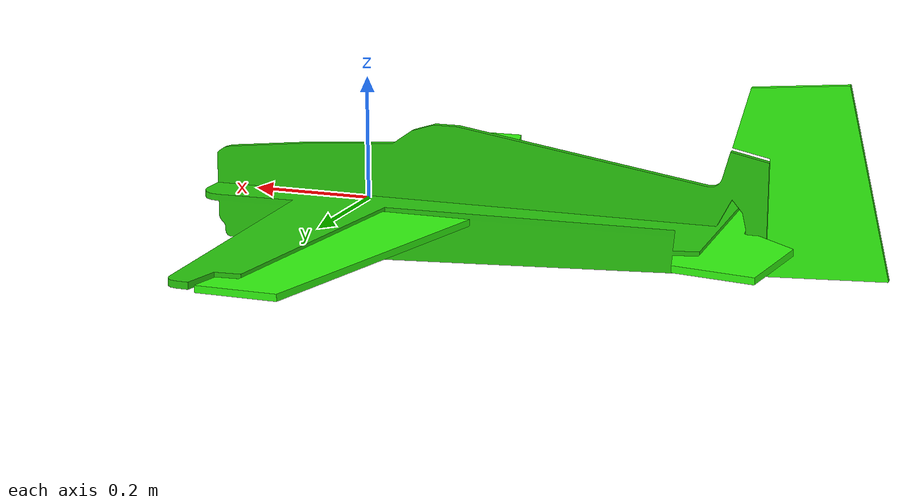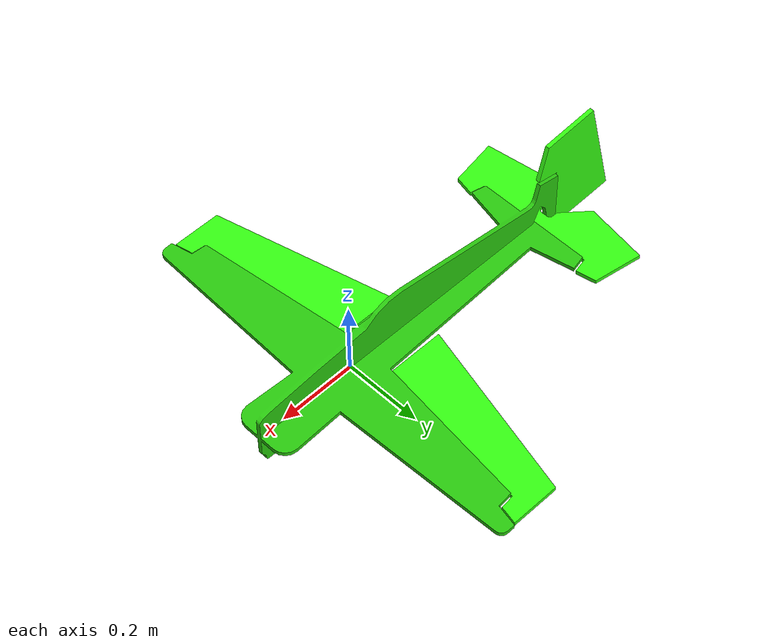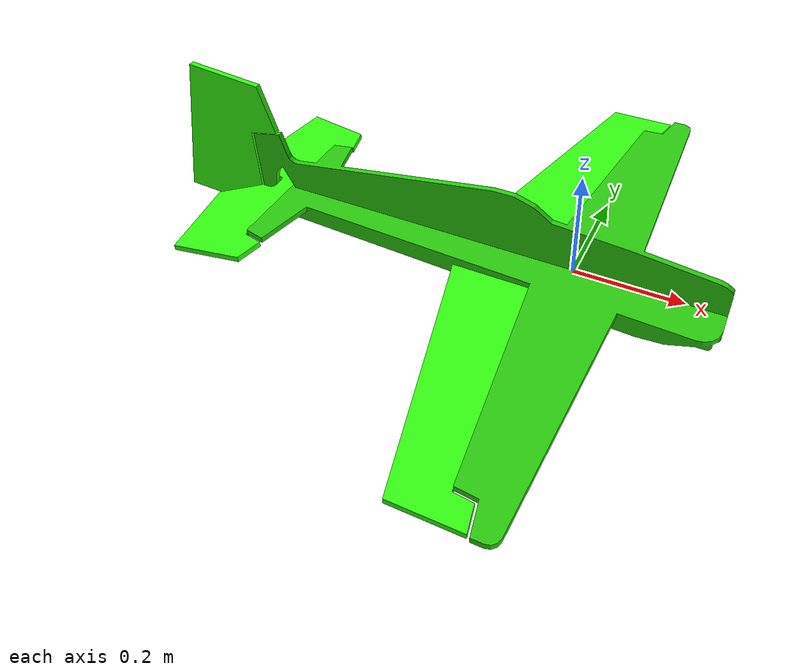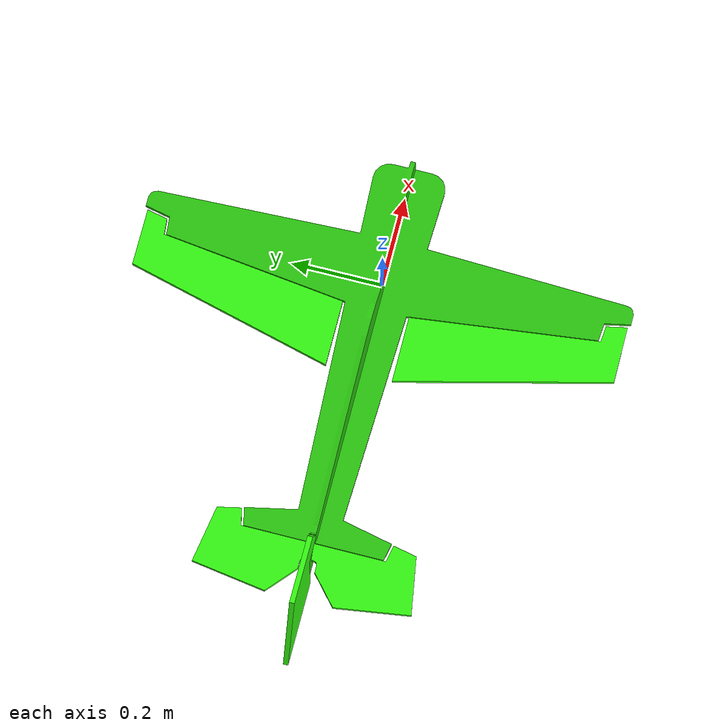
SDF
<sdf version='1.7'>
  <model name='Edge540XL'>
    <link name='fuselage'>
      <inertial>
        <pose>-0.073805 -0.002064 0.00143 0 -0 0</pose>
        <mass>1.135</mass>
        <inertia>
          <ixx>0.0263</ixx>
          <ixy>0</ixy>
          <ixz>0</ixz>
          <iyy>0.0408359</iyy>
          <iyz>0</iyz>
          <izz>0.0500165</izz>
        </inertia>
      </inertial>
      <collision name='fuselage_collision'>
        <pose>0 0 0 0 -0 0</pose>
        <geometry>
          <mesh>
            <scale>1.8 1.8 1.8</scale>
            <uri>meshes/fuselage.dae</uri>
          </mesh>
        </geometry>
      </collision>
      <visual name='fuselage_visual'>
        <pose>0 0 0 0 -0 0</pose>
        <geometry>
          <mesh>
            <scale>1.8 1.8 1.8</scale>
            <uri>meshes/fuselage.dae</uri>
          </mesh>
        </geometry>
      </visual>
      <sensor name="imu_sensor" type="imu">
        <always_on>1</always_on>
        <update_rate>50</update_rate>
        <imu>
          <angular_velocity>
            <x>
              <noise type="gaussian">
                <mean>0</mean>
                <stddev>0.009</stddev>
                <bias_mean>0.00075</bias_mean>
                <bias_stddev>0.005</bias_stddev>
                <dynamic_bias_stddev>0.00002</dynamic_bias_stddev>
                <dynamic_bias_correlation_time>400.0</dynamic_bias_correlation_time>
                <precision>0.00025</precision>
              </noise>
            </x>
            <y>
              <noise type="gaussian">
                <mean>0</mean>
                <stddev>0.009</stddev>
                <bias_mean>0.00075</bias_mean>
                <bias_stddev>0.005</bias_stddev>
                <dynamic_bias_stddev>0.00002</dynamic_bias_stddev>
                <dynamic_bias_correlation_time>400.0</dynamic_bias_correlation_time>
                <precision>0.00025</precision>
              </noise>
            </y>
            <z>
              <noise type="gaussian">
                <mean>0</mean>
                <stddev>0.009</stddev>
                <bias_mean>0.00075</bias_mean>
                <bias_stddev>0.005</bias_stddev>
                <dynamic_bias_stddev>0.00002</dynamic_bias_stddev>
                <dynamic_bias_correlation_time>400.0</dynamic_bias_correlation_time>
                <precision>0.00025</precision>
              </noise>
            </z>
          </angular_velocity>
          <linear_acceleration>
            <x>
              <noise type="gaussian">
                <mean>0</mean>
                <stddev>0.021</stddev>
                <bias_mean>0.05</bias_mean>
                <bias_stddev>0.0075</bias_stddev>
                <dynamic_bias_stddev>0.000375</dynamic_bias_stddev>
                <dynamic_bias_correlation_time>175.0</dynamic_bias_correlation_time>
                <precision>0.005</precision>
              </noise>
            </x>
            <y>
              <noise type="gaussian">
                <mean>0</mean>
                <stddev>0.021</stddev>
                <bias_mean>0.05</bias_mean>
                <bias_stddev>0.0075</bias_stddev>
                <dynamic_bias_stddev>0.000375</dynamic_bias_stddev>
                <dynamic_bias_correlation_time>175.0</dynamic_bias_correlation_time>
                <precision>0.005</precision>
              </noise>
            </y>
            <z>
              <noise type="gaussian">
                <mean>0</mean>
                <stddev>0.021</stddev>
                <bias_mean>0.05</bias_mean>
                <bias_stddev>0.0075</bias_stddev>
                <dynamic_bias_stddev>0.000375</dynamic_bias_stddev>
                <dynamic_bias_correlation_time>175.0</dynamic_bias_correlation_time>
                <precision>0.005</precision>
              </noise>
            </z>
          </linear_acceleration>
      </imu>
      </sensor>
      <sensor name="camera_front" type="rgbd_camera">
        <camera name="camera_front">
          <horizontal_fov>1.5184</horizontal_fov>
          <lens>
            <intrinsics>
              <!-- fx = fy = width / ( 2 * tan (hfov / 2 ) ) -->
              <fx>168.61097</fx>
              <fy>168.61097</fy>
              <!-- cx = ( width + 1 ) / 2 -->
              <cx>160.5</cx>
              <!-- cy = ( height + 1 ) / 2 -->
              <cy>120.5</cy>
              <s>0</s>
            </intrinsics>
          </lens>
          <distortion>
            <k1>0.0</k1>
            <k2>0.0</k2>
            <k3>0.0</k3>
            <p1>0.0</p1>
            <p2>0.0</p2>
            <center>0.5 0.5</center>
          </distortion>
          <image>
            <width>320</width>
            <height>240</height>
            <format>R8G8B8</format>
          </image>
          <clip>
            <near>0.01</near>
            <far>300</far>
          </clip>
          <depth_camera>
            <clip>
              <near>0.1</near>
              <far>10</far>
            </clip>
          </depth_camera>
          <noise>
            <type>gaussian</type>
            <mean>0</mean>
            <stddev>0.007</stddev>
          </noise>
        </camera>
        <always_on>1</always_on>
        <update_rate>20</update_rate>
        <visualize>0</visualize>
        <pose frame="">0.438 0 0.272 0 -0 0</pose>
      </sensor>
      <sensor name="air_pressure" type="air_pressure">
          <always_on>1</always_on>
          <update_rate>20</update_rate>
          <air_pressure>
              <reference_altitude>0</reference_altitude>
              <noise type="gaussian">
                <mean>0.00000008</mean>
              </noise>
          </air_pressure>
      </sensor>
      <sensor name="magnetometer" type="magnetometer">
          <always_on>1</always_on>
          <update_rate>20</update_rate>
          <magnetometer>
              <x>
                <noise type="gaussian">
                  <mean>0.000000080</mean>
                  <bias_mean>0.000000400</bias_mean>
                </noise>
              </x>
              <y>
                <noise type="gaussian">
                  <mean>0.000000080</mean>
                  <bias_mean>0.000000400</bias_mean>
                </noise>
              </y>
              <z>
                <noise type="gaussian">
                  <mean>0.000000080</mean>
                  <bias_mean>0.000000400</bias_mean>
                </noise>
              </z>
          </magnetometer>
      </sensor>
    </link>
    <joint name='aileron_left_hinge' type='revolute'>
      <pose relative_to='fuselage'>-0.0293 0.2777 0 0 -0 0</pose>
      <parent>fuselage</parent>
      <child>aileron_left</child>
      <axis>
        <xyz>0 1 0</xyz>
        <limit>
          <lower>-0.51</lower>
          <upper>0.54</upper>
          <effort>30</effort>
          <velocity>10</velocity>
        </limit>
        <dynamics>
          <spring_reference>0</spring_reference>
          <spring_stiffness>0</spring_stiffness>
        </dynamics>
      </axis>
    </joint>
    <link name='aileron_left'>
      <pose relative_to='aileron_left_hinge'>0 0 0 0 -0 0</pose>
      <inertial>
        <pose>-0.03082 0.006569 -0.003 0 -0 0</pose>
        <mass>0.10167</mass>
        <inertia>
          <ixx>0.00056832</ixx>
          <ixy>-0.00011948</ixy>
          <ixz>1.6682e-22</ixz>
          <iyy>6.5384e-05</iyy>
          <iyz>8.9669e-22</iyz>
          <izz>0.00063309</izz>
        </inertia>
      </inertial>
      <collision name='aileron_left_collision'>
        <pose>0 0 0 0 -0 0</pose>
        <geometry>
          <mesh>
            <scale>1.8 1.8 1.8</scale>
            <uri>meshes/aileron_left.dae</uri>
          </mesh>
        </geometry>
      </collision>
      <visual name='aileron_left_visual'>
        <pose>0 0 0 0 -0 0</pose>
        <geometry>
          <mesh>
            <scale>1.8 1.8 1.8</scale>
            <uri>meshes/aileron_left.dae</uri>
          </mesh>
        </geometry>
      </visual>
    </link>
    <joint name='aileron_right_hinge' type='revolute'>
      <pose relative_to='fuselage'>-0.0293 -0.2777 0 0 -0 0</pose>
      <parent>fuselage</parent>
      <child>aileron_right</child>
      <axis>
        <xyz>0 1 0</xyz>
        <limit>
          <lower>-0.51</lower>
          <upper>0.54</upper>
          <effort>30</effort>
          <velocity>10</velocity>
        </limit>
        <dynamics>
          <spring_reference>0</spring_reference>
          <spring_stiffness>0</spring_stiffness>
        </dynamics>
      </axis>
    </joint>
    <link name='aileron_right'>
      <pose relative_to='aileron_right_hinge'>0 0 0 0 -0 0</pose>
      <inertial>
        <pose>-0.03082 -0.006569 0 0 -0 0</pose>
        <mass>0.10167</mass>
        <inertia>
          <ixx>0.00056832</ixx>
          <ixy>0.00011948</ixy>
          <ixz>7.0143e-22</ixz>
          <iyy>6.5384e-05</iyy>
          <iyz>-1.7502e-21</iyz>
          <izz>0.00063309</izz>
        </inertia>
      </inertial>
      <collision name='aileron_right_collision'>
        <pose>0 0 0 0 -0 0</pose>
        <geometry>
          <mesh>
            <scale>1.8 1.8 1.8</scale>
            <uri>meshes/aileron_right.dae</uri>
          </mesh>
        </geometry>
      </collision>
      <visual name='aileron_right_visual'>
        <pose>0 0 0 0 -0 0</pose>
        <geometry>
          <mesh>
            <scale>1.8 1.8 1.8</scale>
            <uri>meshes/aileron_right.dae</uri>
          </mesh>
        </geometry>
      </visual>
    </link>
    <joint name='elevator_hinge' type='revolute'>
      <pose relative_to='fuselage'>-0.5843 0 0 0 -0 0</pose>
      <parent>fuselage</parent>
      <child>elevator</child>
      <axis>
        <xyz>0 1 0</xyz>
        <limit>
          <lower>-0.8412</lower>
          <upper>0.9355</upper>
          <effort>30</effort>
          <velocity>10</velocity>
        </limit>
        <dynamics>
          <spring_reference>0</spring_reference>
          <spring_stiffness>0</spring_stiffness>
        </dynamics>
      </axis>
    </joint>
    <link name='elevator'>
      <pose relative_to='elevator_hinge'>0 0 0 0 -0 0</pose>
      <inertial>
        <pose>-0.02704 0 0 0 -0 0</pose>
        <mass>0.092527</mass>
        <inertia>
          <ixx>0.00057225</ixx>
          <ixy>2.0113e-19</ixy>
          <ixz>-3.3011e-22</ixz>
          <iyy>3.7112e-05</iyy>
          <iyz>2.0959e-21</iyz>
          <izz>0.0006088</izz>
        </inertia>
      </inertial>
      <collision name='elevator_collision'>
        <pose>0 0 0 0 -0 0</pose>
        <geometry>
          <mesh>
            <scale>1.8 1.8 1.8</scale>
            <uri>meshes/elevator.dae</uri>
          </mesh>
        </geometry>
      </collision>
      <visual name='elevator_visual'>
        <pose>0 0 0 0 -0 0</pose>
        <geometry>
          <mesh>
            <scale>1.8 1.8 1.8</scale>
            <uri>meshes/elevator.dae</uri>
          </mesh>
        </geometry>
      </visual>
    </link>
    <joint name='rudder_hinge' type='revolute'>
      <pose relative_to='fuselage'>-0.6536 0 0.0238 1.5707963267948966 -0 0</pose>
      <parent>fuselage</parent>
      <child>rudder</child>
      <axis>
        <xyz>0 -1 0</xyz>
        <limit>
          <lower>-0.7854</lower>
          <upper>0.7854</upper>
          <effort>30</effort>
          <velocity>10</velocity>
        </limit>
        <dynamics>
          <spring_reference>0</spring_reference>
          <spring_stiffness>0</spring_stiffness>
        </dynamics>
      </axis>
    </joint>
    <link name='rudder'>
      <pose relative_to='rudder_hinge'>0 0 0 0 -0 0</pose>
      <inertial>
        <pose>-0.037261 0.031658 0 0 -0 0</pose>
        <mass>0.090788</mass>
        <inertia>
          <ixx>0.00020448</ixx>
          <ixy>-4.1266e-05</ixy>
          <ixz>1.0668e-21</ixz>
          <iyy>7.7098e-05</iyy>
          <iyz>-1.5715e-22</iyz>
          <izz>0.00028104</izz>
        </inertia>
      </inertial>
      <collision name='rudder_collision'>
        <pose>0 0 0 0 -0 0</pose>
        <geometry>
          <mesh>
            <scale>1.8 1.8 1.8</scale>
            <uri>meshes/rudder.dae</uri>
          </mesh>
        </geometry>
      </collision>
      <visual name='rudder_visual'>
        <pose>0 0 0 0 -0 0</pose>
        <geometry>
          <mesh>
            <scale>1.8 1.8 1.8</scale>
            <uri>meshes/rudder.dae</uri>
          </mesh>
        </geometry>
      </visual>
    </link>
  </model>
</sdf>
